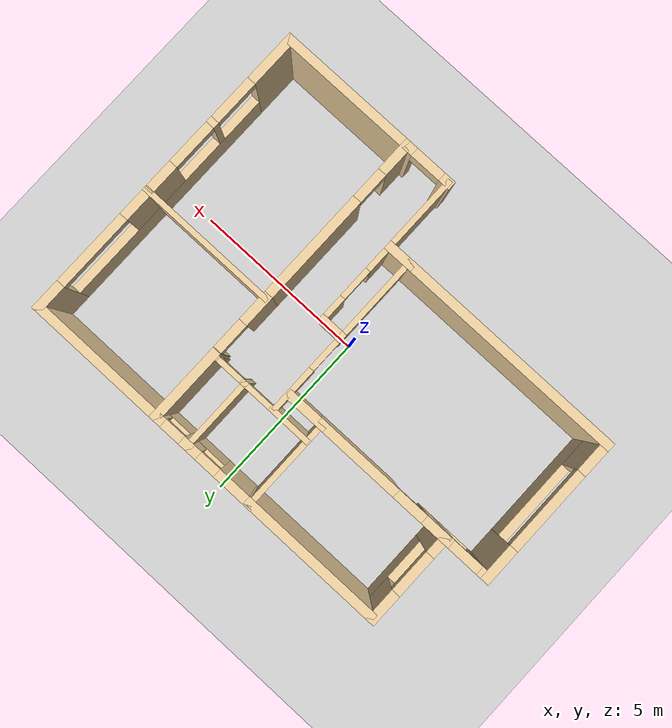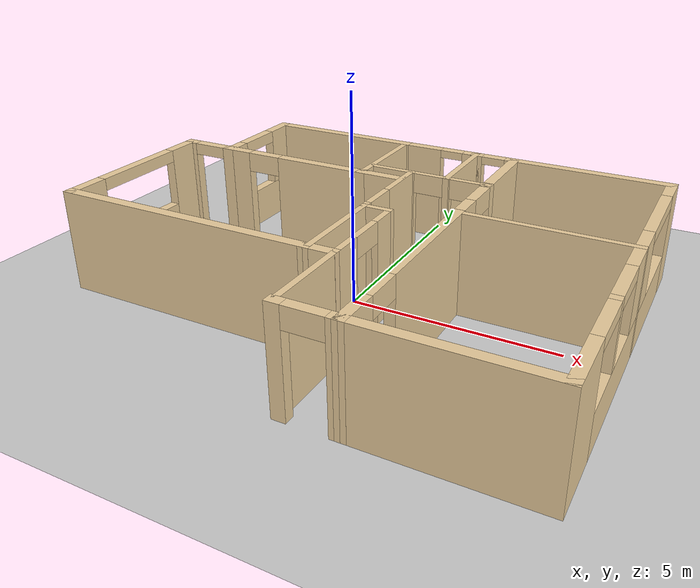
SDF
<?xml version="1.0" ?>
<sdf version="1.5">
  <world name="default">

    <!-- A global light source -->
    <include>
      <uri>model://sun</uri>
    </include>

    <!-- A ground plane -->
    <include>
      <uri>model://ground_plane</uri>
    </include>

    <!-- The main building -->
    <include>
      <static>true</static>
        <pose>0 0 0 0 0 0</pose>
      <uri>model://wohnung</uri>
    </include>

  </world>
</sdf>

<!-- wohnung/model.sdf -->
<sdf version='1.6'>
  <model name='wohnung'>
    <pose frame=''>-0.0465 -0.031546 0 0 -0 0</pose>
    <link name='Wall_101'>
      <pose frame=''>1.5775 -4.43695 0 0 0 -0.000741</pose>
      <visual name='Wall_101_Visual_0'>
        <pose frame=''>-0.632619 0 1.25 0 -0 0</pose>
        <geometry>
          <box>
            <size>0.334763 0.25 2.5</size>
          </box>
        </geometry>
        <material>
          <script>
            <uri>file://media/materials/scripts/gazebo.material</uri>
            <name>Gazebo/Grey</name>
          </script>
          <ambient>0.921569 0.807843 0.615686 1</ambient>
        </material>
        <meta>
          <layer>0</layer>
        </meta>
      </visual>
      <collision name='Wall_101_Collision_0'>
        <geometry>
          <box>
            <size>0.334763 0.25 2.5</size>
          </box>
        </geometry>
        <pose frame=''>-0.632619 0 1.25 0 -0 0</pose>
      </collision>
      <visual name='Wall_101_Visual_1'>
        <pose frame=''>0.617381 0 1.25 0 -0 0</pose>
        <geometry>
          <box>
            <size>0.365237 0.25 2.5</size>
          </box>
        </geometry>
        <material>
          <script>
            <uri>file://media/materials/scripts/gazebo.material</uri>
            <name>Gazebo/Grey</name>
          </script>
          <ambient>0.921569 0.807843 0.615686 1</ambient>
        </material>
        <meta>
          <layer>0</layer>
        </meta>
      </visual>
      <collision name='Wall_101_Collision_1'>
        <geometry>
          <box>
            <size>0.365237 0.25 2.5</size>
          </box>
        </geometry>
        <pose frame=''>0.617381 0 1.25 0 -0 0</pose>
      </collision>
      <visual name='Wall_101_Visual_2'>
        <pose frame=''>-0.015237 0 2.25 0 -0 0</pose>
        <geometry>
          <box>
            <size>0.9 0.25 0.5</size>
          </box>
        </geometry>
        <material>
          <script>
            <uri>file://media/materials/scripts/gazebo.material</uri>
            <name>Gazebo/Grey</name>
          </script>
          <ambient>0.921569 0.807843 0.615686 1</ambient>
        </material>
        <meta>
          <layer>0</layer>
        </meta>
      </visual>
      <collision name='Wall_101_Collision_2'>
        <geometry>
          <box>
            <size>0.9 0.25 0.5</size>
          </box>
        </geometry>
        <pose frame=''>-0.015237 0 2.25 0 -0 0</pose>
      </collision>
    </link>
    <link name='Wall_103'>
      <collision name='Wall_103_Collision'>
        <geometry>
          <box>
            <size>0.855682 0.25 2.5</size>
          </box>
        </geometry>
        <pose frame=''>0 0 1.25 0 -0 0</pose>
      </collision>
      <visual name='Wall_103_Visual'>
        <pose frame=''>0 0 1.25 0 -0 0</pose>
        <geometry>
          <box>
            <size>0.855682 0.25 2.5</size>
          </box>
        </geometry>
        <material>
          <script>
            <uri>file://media/materials/scripts/gazebo.material</uri>
            <name>Gazebo/Grey</name>
          </script>
          <ambient>0.921569 0.807843 0.615686 1</ambient>
        </material>
        <meta>
          <layer>0</layer>
        </meta>
      </visual>
      <pose frame=''>0.55 -2.33845 0 0 -0 0.006611</pose>
    </link>
    <link name='Wall_105'>
      <collision name='Wall_105_Collision'>
        <geometry>
          <box>
            <size>4.1 0.25 2.5</size>
          </box>
        </geometry>
        <pose frame=''>0 0 1.25 0 -0 0</pose>
      </collision>
      <visual name='Wall_105_Visual'>
        <pose frame=''>0 0 1.25 0 -0 0</pose>
        <geometry>
          <box>
            <size>4.1 0.25 2.5</size>
          </box>
        </geometry>
        <material>
          <script>
            <uri>file://media/materials/scripts/gazebo.material</uri>
            <name>Gazebo/Grey</name>
          </script>
          <ambient>0.921569 0.807843 0.615686 1</ambient>
        </material>
        <meta>
          <layer>0</layer>
        </meta>
      </visual>
      <pose frame=''>4.1775 -4.43745 0 0 -0 0</pose>
    </link>
    <link name='Wall_107'>
      <pose frame=''>6.1025 -2.01245 0 0 -0 1.5708</pose>
      <visual name='Wall_107_Visual_0'>
        <pose frame=''>-1.79598 0 1.25 0 -0 0</pose>
        <geometry>
          <box>
            <size>1.50803 0.25 2.5</size>
          </box>
        </geometry>
        <material>
          <script>
            <uri>file://media/materials/scripts/gazebo.material</uri>
            <name>Gazebo/Grey</name>
          </script>
          <ambient>0.921569 0.807843 0.615686 1</ambient>
        </material>
        <meta>
          <layer>0</layer>
        </meta>
      </visual>
      <collision name='Wall_107_Collision_0'>
        <geometry>
          <box>
            <size>1.50803 0.25 2.5</size>
          </box>
        </geometry>
        <pose frame=''>-1.79598 0 1.25 0 -0 0</pose>
      </collision>
      <visual name='Wall_107_Visual_1'>
        <pose frame=''>0.754015 0 0.5 0 -0 0</pose>
        <geometry>
          <box>
            <size>3.59197 0.25 1</size>
          </box>
        </geometry>
        <material>
          <script>
            <uri>file://media/materials/scripts/gazebo.material</uri>
            <name>Gazebo/Grey</name>
          </script>
          <ambient>0.921569 0.807843 0.615686 1</ambient>
        </material>
        <meta>
          <layer>0</layer>
        </meta>
      </visual>
      <collision name='Wall_107_Collision_1'>
        <geometry>
          <box>
            <size>3.59197 0.25 1</size>
          </box>
        </geometry>
        <pose frame=''>0.754015 0 0.5 0 -0 0</pose>
      </collision>
      <visual name='Wall_107_Visual_2'>
        <pose frame=''>0.349304 0 1.75 0 -0 0</pose>
        <geometry>
          <box>
            <size>0.182548 0.25 1.5</size>
          </box>
        </geometry>
        <material>
          <script>
            <uri>file://media/materials/scripts/gazebo.material</uri>
            <name>Gazebo/Grey</name>
          </script>
          <ambient>0.921569 0.807843 0.615686 1</ambient>
        </material>
        <meta>
          <layer>0</layer>
        </meta>
      </visual>
      <collision name='Wall_107_Collision_2'>
        <geometry>
          <box>
            <size>0.182548 0.25 1.5</size>
          </box>
        </geometry>
        <pose frame=''>0.349304 0 1.75 0 -0 0</pose>
      </collision>
      <visual name='Wall_107_Visual_3'>
        <pose frame=''>2.14529 0 1.75 0 -0 0</pose>
        <geometry>
          <box>
            <size>0.809422 0.25 1.5</size>
          </box>
        </geometry>
        <material>
          <script>
            <uri>file://media/materials/scripts/gazebo.material</uri>
            <name>Gazebo/Grey</name>
          </script>
          <ambient>0.921569 0.807843 0.615686 1</ambient>
        </material>
        <meta>
          <layer>0</layer>
        </meta>
      </visual>
      <collision name='Wall_107_Collision_3'>
        <geometry>
          <box>
            <size>0.809422 0.25 1.5</size>
          </box>
        </geometry>
        <pose frame=''>2.14529 0 1.75 0 -0 0</pose>
      </collision>
      <visual name='Wall_107_Visual_4'>
        <pose frame=''>-0.39197 0 2.35 0 -0 0</pose>
        <geometry>
          <box>
            <size>1.3 0.25 0.3</size>
          </box>
        </geometry>
        <material>
          <script>
            <uri>file://media/materials/scripts/gazebo.material</uri>
            <name>Gazebo/Grey</name>
          </script>
          <ambient>0.921569 0.807843 0.615686 1</ambient>
        </material>
        <meta>
          <layer>0</layer>
        </meta>
      </visual>
      <collision name='Wall_107_Collision_4'>
        <geometry>
          <box>
            <size>1.3 0.25 0.3</size>
          </box>
        </geometry>
        <pose frame=''>-0.39197 0 2.35 0 -0 0</pose>
      </collision>
      <visual name='Wall_107_Visual_5'>
        <pose frame=''>1.09058 0 2.35 0 -0 0</pose>
        <geometry>
          <box>
            <size>1.3 0.25 0.3</size>
          </box>
        </geometry>
        <material>
          <script>
            <uri>file://media/materials/scripts/gazebo.material</uri>
            <name>Gazebo/Grey</name>
          </script>
          <ambient>0.921569 0.807843 0.615686 1</ambient>
        </material>
        <meta>
          <layer>0</layer>
        </meta>
      </visual>
      <collision name='Wall_107_Collision_5'>
        <geometry>
          <box>
            <size>1.3 0.25 0.3</size>
          </box>
        </geometry>
        <pose frame=''>1.09058 0 2.35 0 -0 0</pose>
      </collision>
    </link>
    <link name='Wall_109'>
      <pose frame=''>6.1025 2.56255 0 0 0 -1.5708</pose>
      <visual name='Wall_109_Visual_0'>
        <pose frame=''>-1.5565 0 1.25 0 -0 0</pose>
        <geometry>
          <box>
            <size>0.887 0.25 2.5</size>
          </box>
        </geometry>
        <material>
          <script>
            <uri>file://media/materials/scripts/gazebo.material</uri>
            <name>Gazebo/Grey</name>
          </script>
          <ambient>0.921569 0.807843 0.615686 1</ambient>
        </material>
        <meta>
          <layer>0</layer>
        </meta>
      </visual>
      <collision name='Wall_109_Collision_0'>
        <geometry>
          <box>
            <size>0.887 0.25 2.5</size>
          </box>
        </geometry>
        <pose frame=''>-1.5565 0 1.25 0 -0 0</pose>
      </collision>
      <visual name='Wall_109_Visual_1'>
        <pose frame=''>0.4435 0 0.5 0 -0 0</pose>
        <geometry>
          <box>
            <size>3.113 0.25 1</size>
          </box>
        </geometry>
        <material>
          <script>
            <uri>file://media/materials/scripts/gazebo.material</uri>
            <name>Gazebo/Grey</name>
          </script>
          <ambient>0.921569 0.807843 0.615686 1</ambient>
        </material>
        <meta>
          <layer>0</layer>
        </meta>
      </visual>
      <collision name='Wall_109_Collision_1'>
        <geometry>
          <box>
            <size>3.113 0.25 1</size>
          </box>
        </geometry>
        <pose frame=''>0.4435 0 0.5 0 -0 0</pose>
      </collision>
      <visual name='Wall_109_Visual_2'>
        <pose frame=''>1.5435 0 1.75 0 -0 0</pose>
        <geometry>
          <box>
            <size>0.913 0.25 1.5</size>
          </box>
        </geometry>
        <material>
          <script>
            <uri>file://media/materials/scripts/gazebo.material</uri>
            <name>Gazebo/Grey</name>
          </script>
          <ambient>0.921569 0.807843 0.615686 1</ambient>
        </material>
        <meta>
          <layer>0</layer>
        </meta>
      </visual>
      <collision name='Wall_109_Collision_2'>
        <geometry>
          <box>
            <size>0.913 0.25 1.5</size>
          </box>
        </geometry>
        <pose frame=''>1.5435 0 1.75 0 -0 0</pose>
      </collision>
      <visual name='Wall_109_Visual_3'>
        <pose frame=''>-0.013 0 2.35 0 -0 0</pose>
        <geometry>
          <box>
            <size>2.2 0.25 0.3</size>
          </box>
        </geometry>
        <material>
          <script>
            <uri>file://media/materials/scripts/gazebo.material</uri>
            <name>Gazebo/Grey</name>
          </script>
          <ambient>0.921569 0.807843 0.615686 1</ambient>
        </material>
        <meta>
          <layer>0</layer>
        </meta>
      </visual>
      <collision name='Wall_109_Collision_3'>
        <geometry>
          <box>
            <size>2.2 0.25 0.3</size>
          </box>
        </geometry>
        <pose frame=''>-0.013 0 2.35 0 -0 0</pose>
      </collision>
    </link>
    <link name='Wall_112'>
      <pose frame=''>0.2275 2.44355 0 0 -0 3.14159</pose>
      <visual name='Wall_112_Visual_0'>
        <pose frame=''>-0.997639 0 1.25 0 -0 0</pose>
        <geometry>
          <box>
            <size>0.154723 0.15 2.5</size>
          </box>
        </geometry>
        <material>
          <script>
            <uri>file://media/materials/scripts/gazebo.material</uri>
            <name>Gazebo/Grey</name>
          </script>
          <ambient>0.921569 0.807843 0.615686 1</ambient>
        </material>
        <meta>
          <layer>0</layer>
        </meta>
      </visual>
      <collision name='Wall_112_Collision_0'>
        <geometry>
          <box>
            <size>0.154723 0.15 2.5</size>
          </box>
        </geometry>
        <pose frame=''>-0.997639 0 1.25 0 -0 0</pose>
      </collision>
      <visual name='Wall_112_Visual_1'>
        <pose frame=''>0.452361 0 1.25 0 -0 0</pose>
        <geometry>
          <box>
            <size>1.24528 0.15 2.5</size>
          </box>
        </geometry>
        <material>
          <script>
            <uri>file://media/materials/scripts/gazebo.material</uri>
            <name>Gazebo/Grey</name>
          </script>
          <ambient>0.921569 0.807843 0.615686 1</ambient>
        </material>
        <meta>
          <layer>0</layer>
        </meta>
      </visual>
      <collision name='Wall_112_Collision_1'>
        <geometry>
          <box>
            <size>1.24528 0.15 2.5</size>
          </box>
        </geometry>
        <pose frame=''>0.452361 0 1.25 0 -0 0</pose>
      </collision>
      <visual name='Wall_112_Visual_2'>
        <pose frame=''>-0.545277 0 2.25 0 -0 0</pose>
        <geometry>
          <box>
            <size>0.75 0.15 0.5</size>
          </box>
        </geometry>
        <material>
          <script>
            <uri>file://media/materials/scripts/gazebo.material</uri>
            <name>Gazebo/Grey</name>
          </script>
          <ambient>0.921569 0.807843 0.615686 1</ambient>
        </material>
        <meta>
          <layer>0</layer>
        </meta>
      </visual>
      <collision name='Wall_112_Collision_2'>
        <geometry>
          <box>
            <size>0.75 0.15 0.5</size>
          </box>
        </geometry>
        <pose frame=''>-0.545277 0 2.25 0 -0 0</pose>
      </collision>
    </link>
    <link name='Wall_114'>
      <pose frame=''>1.7525 2.44355 0 0 -0 0</pose>
      <visual name='Wall_114_Visual_0'>
        <pose frame=''>-0.509708 0 1.25 0 -0 0</pose>
        <geometry>
          <box>
            <size>0.180584 0.15 2.5</size>
          </box>
        </geometry>
        <material>
          <script>
            <uri>file://media/materials/scripts/gazebo.material</uri>
            <name>Gazebo/Grey</name>
          </script>
          <ambient>0.921569 0.807843 0.615686 1</ambient>
        </material>
        <meta>
          <layer>0</layer>
        </meta>
      </visual>
      <collision name='Wall_114_Collision_0'>
        <geometry>
          <box>
            <size>0.180584 0.15 2.5</size>
          </box>
        </geometry>
        <pose frame=''>-0.509708 0 1.25 0 -0 0</pose>
      </collision>
      <visual name='Wall_114_Visual_1'>
        <pose frame=''>0.465292 0 1.25 0 -0 0</pose>
        <geometry>
          <box>
            <size>0.269416 0.15 2.5</size>
          </box>
        </geometry>
        <material>
          <script>
            <uri>file://media/materials/scripts/gazebo.material</uri>
            <name>Gazebo/Grey</name>
          </script>
          <ambient>0.921569 0.807843 0.615686 1</ambient>
        </material>
        <meta>
          <layer>0</layer>
        </meta>
      </visual>
      <collision name='Wall_114_Collision_1'>
        <geometry>
          <box>
            <size>0.269416 0.15 2.5</size>
          </box>
        </geometry>
        <pose frame=''>0.465292 0 1.25 0 -0 0</pose>
      </collision>
      <visual name='Wall_114_Visual_2'>
        <pose frame=''>-0.044416 0 2.25 0 -0 0</pose>
        <geometry>
          <box>
            <size>0.75 0.15 0.5</size>
          </box>
        </geometry>
        <material>
          <script>
            <uri>file://media/materials/scripts/gazebo.material</uri>
            <name>Gazebo/Grey</name>
          </script>
          <ambient>0.921569 0.807843 0.615686 1</ambient>
        </material>
        <meta>
          <layer>0</layer>
        </meta>
      </visual>
      <collision name='Wall_114_Collision_2'>
        <geometry>
          <box>
            <size>0.75 0.15 0.5</size>
          </box>
        </geometry>
        <pose frame=''>-0.044416 0 2.25 0 -0 0</pose>
      </collision>
    </link>
    <link name='Wall_117'>
      <collision name='Wall_117_Collision'>
        <geometry>
          <box>
            <size>2.45 0.15 2.5</size>
          </box>
        </geometry>
        <pose frame=''>0 0 1.25 0 -0 0</pose>
      </collision>
      <visual name='Wall_117_Visual'>
        <pose frame=''>0 0 1.25 0 -0 0</pose>
        <geometry>
          <box>
            <size>2.45 0.15 2.5</size>
          </box>
        </geometry>
        <material>
          <script>
            <uri>file://media/materials/scripts/gazebo.material</uri>
            <name>Gazebo/Grey</name>
          </script>
          <ambient>0.921569 0.807843 0.615686 1</ambient>
        </material>
        <meta>
          <layer>0</layer>
        </meta>
      </visual>
      <pose frame=''>0.2885 -1.13645 0 0 0 -1.5708</pose>
    </link>
    <link name='Wall_119'>
      <pose frame=''>0.2885 1.18855 0 0 -0 1.5708</pose>
      <visual name='Wall_119_Visual_0'>
        <pose frame=''>-1.11461 0 1.25 0 -0 0</pose>
        <geometry>
          <box>
            <size>0.270787 0.15 2.5</size>
          </box>
        </geometry>
        <material>
          <script>
            <uri>file://media/materials/scripts/gazebo.material</uri>
            <name>Gazebo/Grey</name>
          </script>
          <ambient>0.921569 0.807843 0.615686 1</ambient>
        </material>
        <meta>
          <layer>0</layer>
        </meta>
      </visual>
      <collision name='Wall_119_Collision_0'>
        <geometry>
          <box>
            <size>0.270787 0.15 2.5</size>
          </box>
        </geometry>
        <pose frame=''>-1.11461 0 1.25 0 -0 0</pose>
      </collision>
      <visual name='Wall_119_Visual_1'>
        <pose frame=''>0.585394 0 1.25 0 -0 0</pose>
        <geometry>
          <box>
            <size>1.32921 0.15 2.5</size>
          </box>
        </geometry>
        <material>
          <script>
            <uri>file://media/materials/scripts/gazebo.material</uri>
            <name>Gazebo/Grey</name>
          </script>
          <ambient>0.921569 0.807843 0.615686 1</ambient>
        </material>
        <meta>
          <layer>0</layer>
        </meta>
      </visual>
      <collision name='Wall_119_Collision_1'>
        <geometry>
          <box>
            <size>1.32921 0.15 2.5</size>
          </box>
        </geometry>
        <pose frame=''>0.585394 0 1.25 0 -0 0</pose>
      </collision>
      <visual name='Wall_119_Visual_2'>
        <pose frame=''>-0.529213 0 2.25 0 -0 0</pose>
        <geometry>
          <box>
            <size>0.9 0.15 0.5</size>
          </box>
        </geometry>
        <material>
          <script>
            <uri>file://media/materials/scripts/gazebo.material</uri>
            <name>Gazebo/Grey</name>
          </script>
          <ambient>0.921569 0.807843 0.615686 1</ambient>
        </material>
        <meta>
          <layer>0</layer>
        </meta>
      </visual>
      <collision name='Wall_119_Collision_2'>
        <geometry>
          <box>
            <size>0.9 0.15 0.5</size>
          </box>
        </geometry>
        <pose frame=''>-0.529213 0 2.25 0 -0 0</pose>
      </collision>
    </link>
    <link name='Wall_14'>
      <collision name='Wall_14_Collision'>
        <geometry>
          <box>
            <size>4.1 0.25 2.5</size>
          </box>
        </geometry>
        <pose frame=''>0 0 1.25 0 -0 0</pose>
      </collision>
      <visual name='Wall_14_Visual'>
        <pose frame=''>0 0 1.25 0 -0 0</pose>
        <geometry>
          <box>
            <size>4.1 0.25 2.5</size>
          </box>
        </geometry>
        <material>
          <script>
            <uri>file://media/materials/scripts/gazebo.material</uri>
            <name>Gazebo/Grey</name>
          </script>
          <ambient>0.921569 0.807843 0.615686 1</ambient>
        </material>
        <meta>
          <layer>0</layer>
        </meta>
      </visual>
      <pose frame=''>-2.7225 4.43755 0 0 -0 0</pose>
    </link>
    <link name='Wall_26'>
      <pose frame=''>0.215 4.43755 0 0 -0 0</pose>
      <visual name='Wall_26_Visual_0'>
        <pose frame=''>-0.53942 0 1.25 0 -0 0</pose>
        <geometry>
          <box>
            <size>1.19616 0.25 2.5</size>
          </box>
        </geometry>
        <material>
          <script>
            <uri>file://media/materials/scripts/gazebo.material</uri>
            <name>Gazebo/Grey</name>
          </script>
          <ambient>0.921569 0.807843 0.615686 1</ambient>
        </material>
        <meta>
          <layer>0</layer>
        </meta>
      </visual>
      <collision name='Wall_26_Collision_0'>
        <geometry>
          <box>
            <size>1.19616 0.25 2.5</size>
          </box>
        </geometry>
        <pose frame=''>-0.53942 0 1.25 0 -0 0</pose>
      </collision>
      <visual name='Wall_26_Visual_1'>
        <pose frame=''>0.59808 0 0.75 0 -0 0</pose>
        <geometry>
          <box>
            <size>1.07884 0.25 1.5</size>
          </box>
        </geometry>
        <material>
          <script>
            <uri>file://media/materials/scripts/gazebo.material</uri>
            <name>Gazebo/Grey</name>
          </script>
          <ambient>0.921569 0.807843 0.615686 1</ambient>
        </material>
        <meta>
          <layer>0</layer>
        </meta>
      </visual>
      <collision name='Wall_26_Collision_1'>
        <geometry>
          <box>
            <size>1.07884 0.25 1.5</size>
          </box>
        </geometry>
        <pose frame=''>0.59808 0 0.75 0 -0 0</pose>
      </collision>
      <visual name='Wall_26_Visual_2'>
        <pose frame=''>0.89808 0 2 0 -0 0</pose>
        <geometry>
          <box>
            <size>0.47884 0.25 1</size>
          </box>
        </geometry>
        <material>
          <script>
            <uri>file://media/materials/scripts/gazebo.material</uri>
            <name>Gazebo/Grey</name>
          </script>
          <ambient>0.921569 0.807843 0.615686 1</ambient>
        </material>
        <meta>
          <layer>0</layer>
        </meta>
      </visual>
      <collision name='Wall_26_Collision_2'>
        <geometry>
          <box>
            <size>0.47884 0.25 1</size>
          </box>
        </geometry>
        <pose frame=''>0.89808 0 2 0 -0 0</pose>
      </collision>
      <visual name='Wall_26_Visual_3'>
        <pose frame=''>0.35866 0 2.4 0 -0 0</pose>
        <geometry>
          <box>
            <size>0.6 0.25 0.2</size>
          </box>
        </geometry>
        <material>
          <script>
            <uri>file://media/materials/scripts/gazebo.material</uri>
            <name>Gazebo/Grey</name>
          </script>
          <ambient>0.921569 0.807843 0.615686 1</ambient>
        </material>
        <meta>
          <layer>0</layer>
        </meta>
      </visual>
      <collision name='Wall_26_Collision_3'>
        <geometry>
          <box>
            <size>0.6 0.25 0.2</size>
          </box>
        </geometry>
        <pose frame=''>0.35866 0 2.4 0 -0 0</pose>
      </collision>
    </link>
    <link name='Wall_32'>
      <pose frame=''>1.74 4.43755 0 0 -0 0</pose>
      <visual name='Wall_32_Visual_0'>
        <pose frame=''>-0.478494 0 1.25 0 -0 0</pose>
        <geometry>
          <box>
            <size>0.318012 0.25 2.5</size>
          </box>
        </geometry>
        <material>
          <script>
            <uri>file://media/materials/scripts/gazebo.material</uri>
            <name>Gazebo/Grey</name>
          </script>
          <ambient>0.921569 0.807843 0.615686 1</ambient>
        </material>
        <meta>
          <layer>0</layer>
        </meta>
      </visual>
      <collision name='Wall_32_Collision_0'>
        <geometry>
          <box>
            <size>0.318012 0.25 2.5</size>
          </box>
        </geometry>
        <pose frame=''>-0.478494 0 1.25 0 -0 0</pose>
      </collision>
      <visual name='Wall_32_Visual_1'>
        <pose frame=''>0.159006 0 0.75 0 -0 0</pose>
        <geometry>
          <box>
            <size>0.956988 0.25 1.5</size>
          </box>
        </geometry>
        <material>
          <script>
            <uri>file://media/materials/scripts/gazebo.material</uri>
            <name>Gazebo/Grey</name>
          </script>
          <ambient>0.921569 0.807843 0.615686 1</ambient>
        </material>
        <meta>
          <layer>0</layer>
        </meta>
      </visual>
      <collision name='Wall_32_Collision_1'>
        <geometry>
          <box>
            <size>0.956988 0.25 1.5</size>
          </box>
        </geometry>
        <pose frame=''>0.159006 0 0.75 0 -0 0</pose>
      </collision>
      <visual name='Wall_32_Visual_2'>
        <pose frame=''>0.459006 0 2 0 -0 0</pose>
        <geometry>
          <box>
            <size>0.356988 0.25 1</size>
          </box>
        </geometry>
        <material>
          <script>
            <uri>file://media/materials/scripts/gazebo.material</uri>
            <name>Gazebo/Grey</name>
          </script>
          <ambient>0.921569 0.807843 0.615686 1</ambient>
        </material>
        <meta>
          <layer>0</layer>
        </meta>
      </visual>
      <collision name='Wall_32_Collision_2'>
        <geometry>
          <box>
            <size>0.356988 0.25 1</size>
          </box>
        </geometry>
        <pose frame=''>0.459006 0 2 0 -0 0</pose>
      </collision>
      <visual name='Wall_32_Visual_3'>
        <pose frame=''>-0.019488 0 2.4 0 -0 0</pose>
        <geometry>
          <box>
            <size>0.6 0.25 0.2</size>
          </box>
        </geometry>
        <material>
          <script>
            <uri>file://media/materials/scripts/gazebo.material</uri>
            <name>Gazebo/Grey</name>
          </script>
          <ambient>0.921569 0.807843 0.615686 1</ambient>
        </material>
        <meta>
          <layer>0</layer>
        </meta>
      </visual>
      <collision name='Wall_32_Collision_3'>
        <geometry>
          <box>
            <size>0.6 0.25 0.2</size>
          </box>
        </geometry>
        <pose frame=''>-0.019488 0 2.4 0 -0 0</pose>
      </collision>
    </link>
    <link name='Wall_36'>
      <collision name='Wall_36_Collision'>
        <geometry>
          <box>
            <size>2.25 0.25 2.5</size>
          </box>
        </geometry>
        <pose frame=''>0 0 1.25 0 -0 0</pose>
      </collision>
      <visual name='Wall_36_Visual'>
        <pose frame=''>0 0 1.25 0 -0 0</pose>
        <geometry>
          <box>
            <size>2.25 0.25 2.5</size>
          </box>
        </geometry>
        <material>
          <script>
            <uri>file://media/materials/scripts/gazebo.material</uri>
            <name>Gazebo/Grey</name>
          </script>
          <ambient>0.921569 0.807843 0.615686 1</ambient>
        </material>
        <meta>
          <layer>0</layer>
        </meta>
      </visual>
      <pose frame=''>2.2525 3.43755 0 0 0 -1.5708</pose>
    </link>
    <link name='Wall_39'>
      <collision name='Wall_39_Collision'>
        <geometry>
          <box>
            <size>4.05 0.15 2.5</size>
          </box>
        </geometry>
        <pose frame=''>0 0 1.25 0 -0 0</pose>
      </collision>
      <visual name='Wall_39_Visual'>
        <pose frame=''>0 0 1.25 0 -0 0</pose>
        <geometry>
          <box>
            <size>4.05 0.15 2.5</size>
          </box>
        </geometry>
        <material>
          <script>
            <uri>file://media/materials/scripts/gazebo.material</uri>
            <name>Gazebo/Grey</name>
          </script>
          <ambient>0.921569 0.807843 0.615686 1</ambient>
        </material>
        <meta>
          <layer>0</layer>
        </meta>
      </visual>
      <pose frame=''>4.2025 0.612546 0 0 -0 0</pose>
    </link>
    <link name='Wall_43'>
      <collision name='Wall_43_Collision'>
        <geometry>
          <box>
            <size>4.1 0.25 2.5</size>
          </box>
        </geometry>
        <pose frame=''>0 0 1.25 0 -0 0</pose>
      </collision>
      <visual name='Wall_43_Visual'>
        <pose frame=''>0 0 1.25 0 -0 0</pose>
        <geometry>
          <box>
            <size>4.1 0.25 2.5</size>
          </box>
        </geometry>
        <material>
          <script>
            <uri>file://media/materials/scripts/gazebo.material</uri>
            <name>Gazebo/Grey</name>
          </script>
          <ambient>0.921569 0.807843 0.615686 1</ambient>
        </material>
        <meta>
          <layer>0</layer>
        </meta>
      </visual>
      <pose frame=''>4.1775 4.43755 0 0 -0 0</pose>
    </link>
    <link name='Wall_49'>
      <pose frame=''>0.9025 -2.21145 0 0 -0 1.5708</pose>
      <visual name='Wall_49_Visual_0'>
        <pose frame=''>-0.827038 0 1.25 0 -0 0</pose>
        <geometry>
          <box>
            <size>2.94592 0.15 2.5</size>
          </box>
        </geometry>
        <material>
          <script>
            <uri>file://media/materials/scripts/gazebo.material</uri>
            <name>Gazebo/Grey</name>
          </script>
          <ambient>0.921569 0.807843 0.615686 1</ambient>
        </material>
        <meta>
          <layer>0</layer>
        </meta>
      </visual>
      <collision name='Wall_49_Collision_0'>
        <geometry>
          <box>
            <size>2.94592 0.15 2.5</size>
          </box>
        </geometry>
        <pose frame=''>-0.827038 0 1.25 0 -0 0</pose>
      </collision>
      <visual name='Wall_49_Visual_1'>
        <pose frame=''>1.92296 0 1.25 0 -0 0</pose>
        <geometry>
          <box>
            <size>0.754076 0.15 2.5</size>
          </box>
        </geometry>
        <material>
          <script>
            <uri>file://media/materials/scripts/gazebo.material</uri>
            <name>Gazebo/Grey</name>
          </script>
          <ambient>0.921569 0.807843 0.615686 1</ambient>
        </material>
        <meta>
          <layer>0</layer>
        </meta>
      </visual>
      <collision name='Wall_49_Collision_1'>
        <geometry>
          <box>
            <size>0.754076 0.15 2.5</size>
          </box>
        </geometry>
        <pose frame=''>1.92296 0 1.25 0 -0 0</pose>
      </collision>
      <visual name='Wall_49_Visual_2'>
        <pose frame=''>1.09592 0 2.25 0 -0 0</pose>
        <geometry>
          <box>
            <size>0.9 0.15 0.5</size>
          </box>
        </geometry>
        <material>
          <script>
            <uri>file://media/materials/scripts/gazebo.material</uri>
            <name>Gazebo/Grey</name>
          </script>
          <ambient>0.921569 0.807843 0.615686 1</ambient>
        </material>
        <meta>
          <layer>0</layer>
        </meta>
      </visual>
      <collision name='Wall_49_Collision_2'>
        <geometry>
          <box>
            <size>0.9 0.15 0.5</size>
          </box>
        </geometry>
        <pose frame=''>1.09592 0 2.25 0 -0 0</pose>
      </collision>
    </link>
    <link name='Wall_51'>
      <collision name='Wall_51_Collision'>
        <geometry>
          <box>
            <size>0.764099 0.15 2.5</size>
          </box>
        </geometry>
        <pose frame=''>0 0 1.25 0 -0 0</pose>
      </collision>
      <visual name='Wall_51_Visual'>
        <pose frame=''>0 0 1.25 0 -0 0</pose>
        <geometry>
          <box>
            <size>0.764099 0.15 2.5</size>
          </box>
        </geometry>
        <material>
          <script>
            <uri>file://media/materials/scripts/gazebo.material</uri>
            <name>Gazebo/Grey</name>
          </script>
          <ambient>0.921569 0.807843 0.615686 1</ambient>
        </material>
        <meta>
          <layer>0</layer>
        </meta>
      </visual>
      <pose frame=''>0.5955 0.013546 0 0 -0 3.14159</pose>
    </link>
    <link name='Wall_57'>
      <collision name='Wall_57_Collision'>
        <geometry>
          <box>
            <size>6.6 0.25 2.5</size>
          </box>
        </geometry>
        <pose frame=''>0 0 1.25 0 -0 0</pose>
      </collision>
      <visual name='Wall_57_Visual'>
        <pose frame=''>0 0 1.25 0 -0 0</pose>
        <geometry>
          <box>
            <size>6.6 0.25 2.5</size>
          </box>
        </geometry>
        <material>
          <script>
            <uri>file://media/materials/scripts/gazebo.material</uri>
            <name>Gazebo/Grey</name>
          </script>
          <ambient>0.921569 0.807843 0.615686 1</ambient>
        </material>
        <meta>
          <layer>0</layer>
        </meta>
      </visual>
      <pose frame=''>-2.9275 -2.34045 0 0 -0 3.14159</pose>
    </link>
    <link name='Wall_62'>
      <pose frame=''>-2.7725 1.91255 0 0 -0 3.14159</pose>
      <visual name='Wall_62_Visual_0'>
        <pose frame=''>-0.842086 0 1.25 0 -0 0</pose>
        <geometry>
          <box>
            <size>2.51583 0.25 2.5</size>
          </box>
        </geometry>
        <material>
          <script>
            <uri>file://media/materials/scripts/gazebo.material</uri>
            <name>Gazebo/Grey</name>
          </script>
          <ambient>0.921569 0.807843 0.615686 1</ambient>
        </material>
        <meta>
          <layer>0</layer>
        </meta>
      </visual>
      <collision name='Wall_62_Collision_0'>
        <geometry>
          <box>
            <size>2.51583 0.25 2.5</size>
          </box>
        </geometry>
        <pose frame=''>-0.842086 0 1.25 0 -0 0</pose>
      </collision>
      <visual name='Wall_62_Visual_1'>
        <pose frame=''>1.70791 0 1.25 0 -0 0</pose>
        <geometry>
          <box>
            <size>0.784172 0.25 2.5</size>
          </box>
        </geometry>
        <material>
          <script>
            <uri>file://media/materials/scripts/gazebo.material</uri>
            <name>Gazebo/Grey</name>
          </script>
          <ambient>0.921569 0.807843 0.615686 1</ambient>
        </material>
        <meta>
          <layer>0</layer>
        </meta>
      </visual>
      <collision name='Wall_62_Collision_1'>
        <geometry>
          <box>
            <size>0.784172 0.25 2.5</size>
          </box>
        </geometry>
        <pose frame=''>1.70791 0 1.25 0 -0 0</pose>
      </collision>
      <visual name='Wall_62_Visual_2'>
        <pose frame=''>0.865828 0 2.25 0 -0 0</pose>
        <geometry>
          <box>
            <size>0.9 0.25 0.5</size>
          </box>
        </geometry>
        <material>
          <script>
            <uri>file://media/materials/scripts/gazebo.material</uri>
            <name>Gazebo/Grey</name>
          </script>
          <ambient>0.921569 0.807843 0.615686 1</ambient>
        </material>
        <meta>
          <layer>0</layer>
        </meta>
      </visual>
      <collision name='Wall_62_Collision_2'>
        <geometry>
          <box>
            <size>0.9 0.25 0.5</size>
          </box>
        </geometry>
        <pose frame=''>0.865828 0 2.25 0 -0 0</pose>
      </collision>
    </link>
    <link name='Wall_64'>
      <pose frame=''>-4.7475 3.17505 0 0 -0 1.5708</pose>
      <visual name='Wall_64_Visual_0'>
        <pose frame=''>-1.06075 0 1.25 0 -0 0</pose>
        <geometry>
          <box>
            <size>0.653497 0.25 2.5</size>
          </box>
        </geometry>
        <material>
          <script>
            <uri>file://media/materials/scripts/gazebo.material</uri>
            <name>Gazebo/Grey</name>
          </script>
          <ambient>0.921569 0.807843 0.615686 1</ambient>
        </material>
        <meta>
          <layer>0</layer>
        </meta>
      </visual>
      <collision name='Wall_64_Collision_0'>
        <geometry>
          <box>
            <size>0.653497 0.25 2.5</size>
          </box>
        </geometry>
        <pose frame=''>-1.06075 0 1.25 0 -0 0</pose>
      </collision>
      <visual name='Wall_64_Visual_1'>
        <pose frame=''>0.326749 0 0.5 0 -0 0</pose>
        <geometry>
          <box>
            <size>2.1215 0.25 1</size>
          </box>
        </geometry>
        <material>
          <script>
            <uri>file://media/materials/scripts/gazebo.material</uri>
            <name>Gazebo/Grey</name>
          </script>
          <ambient>0.921569 0.807843 0.615686 1</ambient>
        </material>
        <meta>
          <layer>0</layer>
        </meta>
      </visual>
      <collision name='Wall_64_Collision_1'>
        <geometry>
          <box>
            <size>2.1215 0.25 1</size>
          </box>
        </geometry>
        <pose frame=''>0.326749 0 0.5 0 -0 0</pose>
      </collision>
      <visual name='Wall_64_Visual_2'>
        <pose frame=''>0.926749 0 1.75 0 -0 0</pose>
        <geometry>
          <box>
            <size>0.921503 0.25 1.5</size>
          </box>
        </geometry>
        <material>
          <script>
            <uri>file://media/materials/scripts/gazebo.material</uri>
            <name>Gazebo/Grey</name>
          </script>
          <ambient>0.921569 0.807843 0.615686 1</ambient>
        </material>
        <meta>
          <layer>0</layer>
        </meta>
      </visual>
      <collision name='Wall_64_Collision_2'>
        <geometry>
          <box>
            <size>0.921503 0.25 1.5</size>
          </box>
        </geometry>
        <pose frame=''>0.926749 0 1.75 0 -0 0</pose>
      </collision>
      <visual name='Wall_64_Visual_3'>
        <pose frame=''>-0.134003 0 2.35 0 -0 0</pose>
        <geometry>
          <box>
            <size>1.2 0.25 0.3</size>
          </box>
        </geometry>
        <material>
          <script>
            <uri>file://media/materials/scripts/gazebo.material</uri>
            <name>Gazebo/Grey</name>
          </script>
          <ambient>0.921569 0.807843 0.615686 1</ambient>
        </material>
        <meta>
          <layer>0</layer>
        </meta>
      </visual>
      <collision name='Wall_64_Collision_3'>
        <geometry>
          <box>
            <size>1.2 0.25 0.3</size>
          </box>
        </geometry>
        <pose frame=''>-0.134003 0 2.35 0 -0 0</pose>
      </collision>
    </link>
    <link name='Wall_67'>
      <pose frame=''>-5.4225 1.91255 0 0 -0 3.14159</pose>
      <visual name='Wall_67_Visual_0'>
        <pose frame=''>-0.638656 0 1.25 0 -0 0</pose>
        <geometry>
          <box>
            <size>0.322687 0.25 2.5</size>
          </box>
        </geometry>
        <material>
          <script>
            <uri>file://media/materials/scripts/gazebo.material</uri>
            <name>Gazebo/Grey</name>
          </script>
          <ambient>0.921569 0.807843 0.615686 1</ambient>
        </material>
        <meta>
          <layer>0</layer>
        </meta>
      </visual>
      <collision name='Wall_67_Collision_0'>
        <geometry>
          <box>
            <size>0.322687 0.25 2.5</size>
          </box>
        </geometry>
        <pose frame=''>-0.638656 0 1.25 0 -0 0</pose>
      </collision>
      <visual name='Wall_67_Visual_1'>
        <pose frame=''>0.611344 0 1.25 0 -0 0</pose>
        <geometry>
          <box>
            <size>0.377313 0.25 2.5</size>
          </box>
        </geometry>
        <material>
          <script>
            <uri>file://media/materials/scripts/gazebo.material</uri>
            <name>Gazebo/Grey</name>
          </script>
          <ambient>0.921569 0.807843 0.615686 1</ambient>
        </material>
        <meta>
          <layer>0</layer>
        </meta>
      </visual>
      <collision name='Wall_67_Collision_1'>
        <geometry>
          <box>
            <size>0.377313 0.25 2.5</size>
          </box>
        </geometry>
        <pose frame=''>0.611344 0 1.25 0 -0 0</pose>
      </collision>
      <visual name='Wall_67_Visual_2'>
        <pose frame=''>-0.027313 0 0 0 -0 0</pose>
        <geometry>
          <box>
            <size>0.9 0.25 0</size>
          </box>
        </geometry>
        <material>
          <script>
            <uri>file://media/materials/scripts/gazebo.material</uri>
            <name>Gazebo/Grey</name>
          </script>
          <ambient>0.921569 0.807843 0.615686 1</ambient>
        </material>
        <meta>
          <layer>0</layer>
        </meta>
      </visual>
      <collision name='Wall_67_Collision_2'>
        <geometry>
          <box>
            <size>0.9 0.25 0</size>
          </box>
        </geometry>
        <pose frame=''>-0.027313 0 0 0 -0 0</pose>
      </collision>
      <visual name='Wall_67_Visual_3'>
        <pose frame=''>-0.027313 0 2.35 0 -0 0</pose>
        <geometry>
          <box>
            <size>0.9 0.25 0.3</size>
          </box>
        </geometry>
        <material>
          <script>
            <uri>file://media/materials/scripts/gazebo.material</uri>
            <name>Gazebo/Grey</name>
          </script>
          <ambient>0.921569 0.807843 0.615686 1</ambient>
        </material>
        <meta>
          <layer>0</layer>
        </meta>
      </visual>
      <collision name='Wall_67_Collision_3'>
        <geometry>
          <box>
            <size>0.9 0.25 0.3</size>
          </box>
        </geometry>
        <pose frame=''>-0.027313 0 2.35 0 -0 0</pose>
      </collision>
    </link>
    <link name='Wall_68'>
      <pose frame=''>-6.0975 -0.212454 0 0 0 -1.5708</pose>
      <visual name='Wall_68_Visual_0'>
        <pose frame=''>-1.72545 0 1.25 0 -0 0</pose>
        <geometry>
          <box>
            <size>1.0491 0.25 2.5</size>
          </box>
        </geometry>
        <material>
          <script>
            <uri>file://media/materials/scripts/gazebo.material</uri>
            <name>Gazebo/Grey</name>
          </script>
          <ambient>0.921569 0.807843 0.615686 1</ambient>
        </material>
        <meta>
          <layer>0</layer>
        </meta>
      </visual>
      <collision name='Wall_68_Collision_0'>
        <geometry>
          <box>
            <size>1.0491 0.25 2.5</size>
          </box>
        </geometry>
        <pose frame=''>-1.72545 0 1.25 0 -0 0</pose>
      </collision>
      <visual name='Wall_68_Visual_1'>
        <pose frame=''>0.524548 0 0.5 0 -0 0</pose>
        <geometry>
          <box>
            <size>3.4509 0.25 1</size>
          </box>
        </geometry>
        <material>
          <script>
            <uri>file://media/materials/scripts/gazebo.material</uri>
            <name>Gazebo/Grey</name>
          </script>
          <ambient>0.921569 0.807843 0.615686 1</ambient>
        </material>
        <meta>
          <layer>0</layer>
        </meta>
      </visual>
      <collision name='Wall_68_Collision_1'>
        <geometry>
          <box>
            <size>3.4509 0.25 1</size>
          </box>
        </geometry>
        <pose frame=''>0.524548 0 0.5 0 -0 0</pose>
      </collision>
      <visual name='Wall_68_Visual_2'>
        <pose frame=''>1.72455 0 1.75 0 -0 0</pose>
        <geometry>
          <box>
            <size>1.0509 0.25 1.5</size>
          </box>
        </geometry>
        <material>
          <script>
            <uri>file://media/materials/scripts/gazebo.material</uri>
            <name>Gazebo/Grey</name>
          </script>
          <ambient>0.921569 0.807843 0.615686 1</ambient>
        </material>
        <meta>
          <layer>0</layer>
        </meta>
      </visual>
      <collision name='Wall_68_Collision_2'>
        <geometry>
          <box>
            <size>1.0509 0.25 1.5</size>
          </box>
        </geometry>
        <pose frame=''>1.72455 0 1.75 0 -0 0</pose>
      </collision>
      <visual name='Wall_68_Visual_3'>
        <pose frame=''>-0.000903 0 2.35 0 -0 0</pose>
        <geometry>
          <box>
            <size>2.4 0.25 0.3</size>
          </box>
        </geometry>
        <material>
          <script>
            <uri>file://media/materials/scripts/gazebo.material</uri>
            <name>Gazebo/Grey</name>
          </script>
          <ambient>0.921569 0.807843 0.615686 1</ambient>
        </material>
        <meta>
          <layer>0</layer>
        </meta>
      </visual>
      <collision name='Wall_68_Collision_3'>
        <geometry>
          <box>
            <size>2.4 0.25 0.3</size>
          </box>
        </geometry>
        <pose frame=''>-0.000903 0 2.35 0 -0 0</pose>
      </collision>
    </link>
    <link name='Wall_70'>
      <collision name='Wall_70_Collision'>
        <geometry>
          <box>
            <size>1.25 0.25 2.5</size>
          </box>
        </geometry>
        <pose frame=''>0 0 1.25 0 -0 0</pose>
      </collision>
      <visual name='Wall_70_Visual'>
        <pose frame=''>0 0 1.25 0 -0 0</pose>
        <geometry>
          <box>
            <size>1.25 0.25 2.5</size>
          </box>
        </geometry>
        <material>
          <script>
            <uri>file://media/materials/scripts/gazebo.material</uri>
            <name>Gazebo/Grey</name>
          </script>
          <ambient>0.921569 0.807843 0.615686 1</ambient>
        </material>
        <meta>
          <layer>0</layer>
        </meta>
      </visual>
      <pose frame=''>-0.2975 1.91255 0 0 -0 0</pose>
    </link>
    <link name='Wall_76'>
      <collision name='Wall_76_Collision'>
        <geometry>
          <box>
            <size>2.14357 0.15 2.5</size>
          </box>
        </geometry>
        <pose frame=''>0 0 1.25 0 -0 0</pose>
      </collision>
      <visual name='Wall_76_Visual'>
        <pose frame=''>0 0 1.25 0 -0 0</pose>
        <geometry>
          <box>
            <size>2.14357 0.15 2.5</size>
          </box>
        </geometry>
        <material>
          <script>
            <uri>file://media/materials/scripts/gazebo.material</uri>
            <name>Gazebo/Grey</name>
          </script>
          <ambient>0.921569 0.807843 0.615686 1</ambient>
        </material>
        <meta>
          <layer>0</layer>
        </meta>
      </visual>
      <pose frame=''>1.2275 3.44055 0 0 0 -1.5708</pose>
    </link>
    <link name='Wall_89'>
      <pose frame=''>2.2525 1.52505 0 0 0 -1.5708</pose>
      <visual name='Wall_89_Visual_0'>
        <pose frame=''>-0.904292 0 1.25 0 -0 0</pose>
        <geometry>
          <box>
            <size>0.266417 0.25 2.5</size>
          </box>
        </geometry>
        <material>
          <script>
            <uri>file://media/materials/scripts/gazebo.material</uri>
            <name>Gazebo/Grey</name>
          </script>
          <ambient>0.921569 0.807843 0.615686 1</ambient>
        </material>
        <meta>
          <layer>0</layer>
        </meta>
      </visual>
      <collision name='Wall_89_Collision_0'>
        <geometry>
          <box>
            <size>0.266417 0.25 2.5</size>
          </box>
        </geometry>
        <pose frame=''>-0.904292 0 1.25 0 -0 0</pose>
      </collision>
      <visual name='Wall_89_Visual_1'>
        <pose frame=''>0.583208 0 1.25 0 -0 0</pose>
        <geometry>
          <box>
            <size>0.908583 0.25 2.5</size>
          </box>
        </geometry>
        <material>
          <script>
            <uri>file://media/materials/scripts/gazebo.material</uri>
            <name>Gazebo/Grey</name>
          </script>
          <ambient>0.921569 0.807843 0.615686 1</ambient>
        </material>
        <meta>
          <layer>0</layer>
        </meta>
      </visual>
      <collision name='Wall_89_Collision_1'>
        <geometry>
          <box>
            <size>0.908583 0.25 2.5</size>
          </box>
        </geometry>
        <pose frame=''>0.583208 0 1.25 0 -0 0</pose>
      </collision>
      <visual name='Wall_89_Visual_2'>
        <pose frame=''>-0.321083 0 2.25 0 -0 0</pose>
        <geometry>
          <box>
            <size>0.9 0.25 0.5</size>
          </box>
        </geometry>
        <material>
          <script>
            <uri>file://media/materials/scripts/gazebo.material</uri>
            <name>Gazebo/Grey</name>
          </script>
          <ambient>0.921569 0.807843 0.615686 1</ambient>
        </material>
        <meta>
          <layer>0</layer>
        </meta>
      </visual>
      <collision name='Wall_89_Collision_2'>
        <geometry>
          <box>
            <size>0.9 0.25 0.5</size>
          </box>
        </geometry>
        <pose frame=''>-0.321083 0 2.25 0 -0 0</pose>
      </collision>
    </link>
    <link name='Wall_9'>
      <collision name='Wall_9_Collision'>
        <geometry>
          <box>
            <size>2.675 0.15 2.5</size>
          </box>
        </geometry>
        <pose frame=''>0 0 1.25 0 -0 0</pose>
      </collision>
      <visual name='Wall_9_Visual'>
        <pose frame=''>0 0 1.25 0 -0 0</pose>
        <geometry>
          <box>
            <size>2.675 0.15 2.5</size>
          </box>
        </geometry>
        <material>
          <script>
            <uri>file://media/materials/scripts/gazebo.material</uri>
            <name>Gazebo/Grey</name>
          </script>
          <ambient>0.921569 0.807843 0.615686 1</ambient>
        </material>
        <meta>
          <layer>0</layer>
        </meta>
      </visual>
      <pose frame=''>-0.7975 3.17505 0 0 0 -1.5708</pose>
    </link>
    <link name='Wall_97'>
      <pose frame=''>2.2525 -1.91245 0 0 0 -1.5708</pose>
      <visual name='Wall_97_Visual_0'>
        <pose frame=''>-0.955407 0 1.25 0 -0 0</pose>
        <geometry>
          <box>
            <size>3.38919 0.25 2.5</size>
          </box>
        </geometry>
        <material>
          <script>
            <uri>file://media/materials/scripts/gazebo.material</uri>
            <name>Gazebo/Grey</name>
          </script>
          <ambient>0.921569 0.807843 0.615686 1</ambient>
        </material>
        <meta>
          <layer>0</layer>
        </meta>
      </visual>
      <collision name='Wall_97_Collision_0'>
        <geometry>
          <box>
            <size>3.38919 0.25 2.5</size>
          </box>
        </geometry>
        <pose frame=''>-0.955407 0 1.25 0 -0 0</pose>
      </collision>
      <visual name='Wall_97_Visual_1'>
        <pose frame=''>2.14459 0 1.25 0 -0 0</pose>
        <geometry>
          <box>
            <size>1.01081 0.25 2.5</size>
          </box>
        </geometry>
        <material>
          <script>
            <uri>file://media/materials/scripts/gazebo.material</uri>
            <name>Gazebo/Grey</name>
          </script>
          <ambient>0.921569 0.807843 0.615686 1</ambient>
        </material>
        <meta>
          <layer>0</layer>
        </meta>
      </visual>
      <collision name='Wall_97_Collision_1'>
        <geometry>
          <box>
            <size>1.01081 0.25 2.5</size>
          </box>
        </geometry>
        <pose frame=''>2.14459 0 1.25 0 -0 0</pose>
      </collision>
      <visual name='Wall_97_Visual_2'>
        <pose frame=''>1.18919 0 2.25 0 -0 0</pose>
        <geometry>
          <box>
            <size>0.9 0.25 0.5</size>
          </box>
        </geometry>
        <material>
          <script>
            <uri>file://media/materials/scripts/gazebo.material</uri>
            <name>Gazebo/Grey</name>
          </script>
          <ambient>0.921569 0.807843 0.615686 1</ambient>
        </material>
        <meta>
          <layer>0</layer>
        </meta>
      </visual>
      <collision name='Wall_97_Collision_2'>
        <geometry>
          <box>
            <size>0.9 0.25 0.5</size>
          </box>
        </geometry>
        <pose frame=''>1.18919 0 2.25 0 -0 0</pose>
      </collision>
    </link>
    <static>1</static>
  </model>
</sdf>
